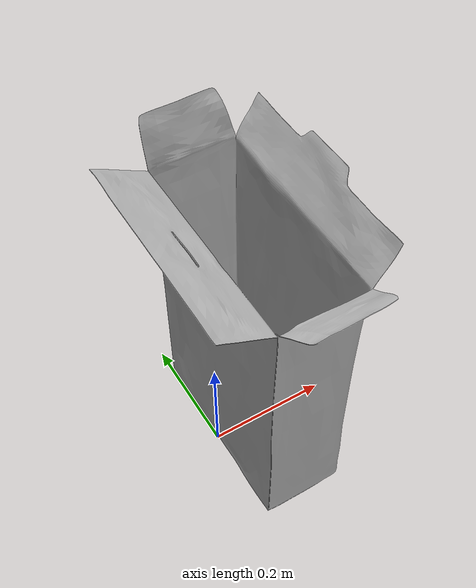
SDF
<?xml version='1.0'?>
<sdf version='1.6'>
  <model name='cereal_box'>
    <link name='link_1'>
         <visual name='visual'>
        <pose frame=''>0 0 0 0 0 0</pose>
        <geometry>
          <mesh>
            <uri>model://cereal_box/meshes/cereal_box.dae</uri>
            <scale>0.8 0.8 0.8</scale>
          </mesh>
        </geometry>
        <cast_shadows>0</cast_shadows>
        <transparency>0</transparency>
      </visual>
            <collision name="collision">
        <geometry>
          <mesh>
            <uri>model://cereal_box/meshes/cereal_box.dae</uri>
            <scale>0.8 0.8 0.8</scale>
          </mesh>
        </geometry>
      </collision>

    </link>

    <static>1</static>
    <allow_auto_disable>1</allow_auto_disable>
  </model>
</sdf>
